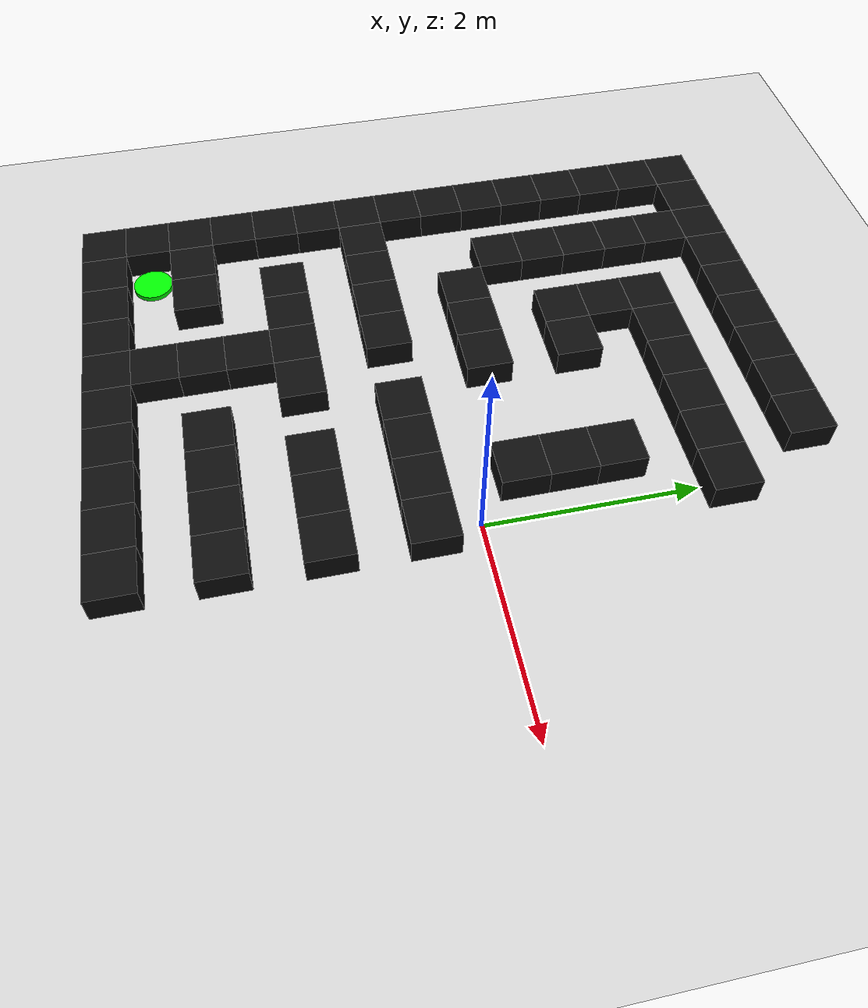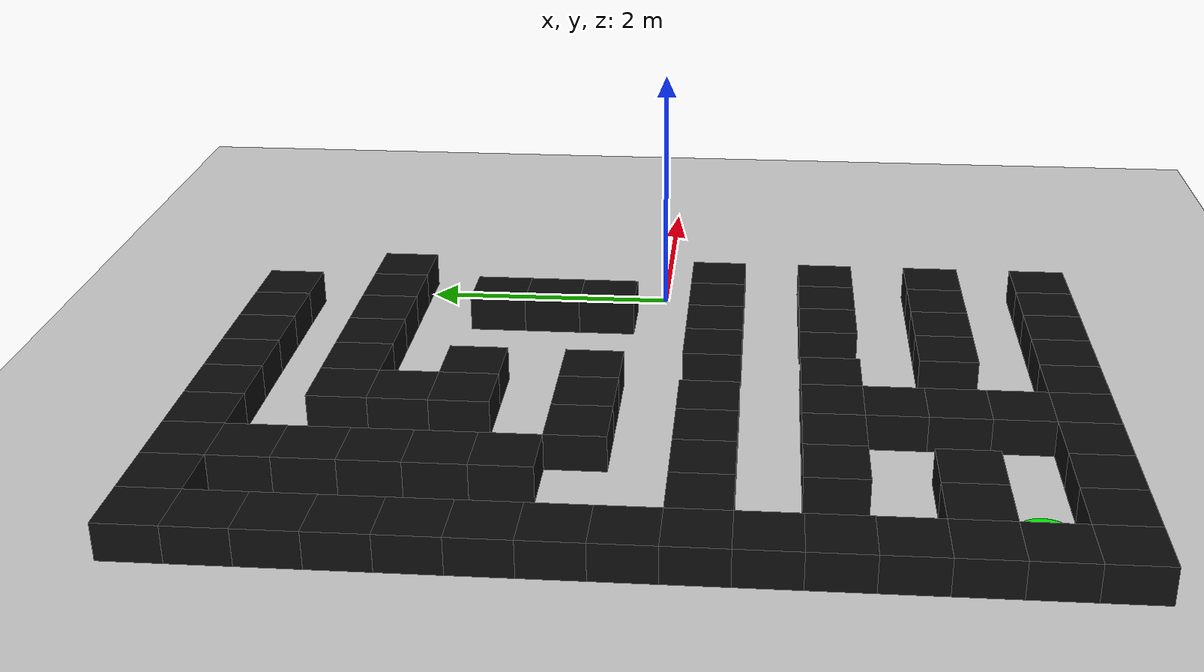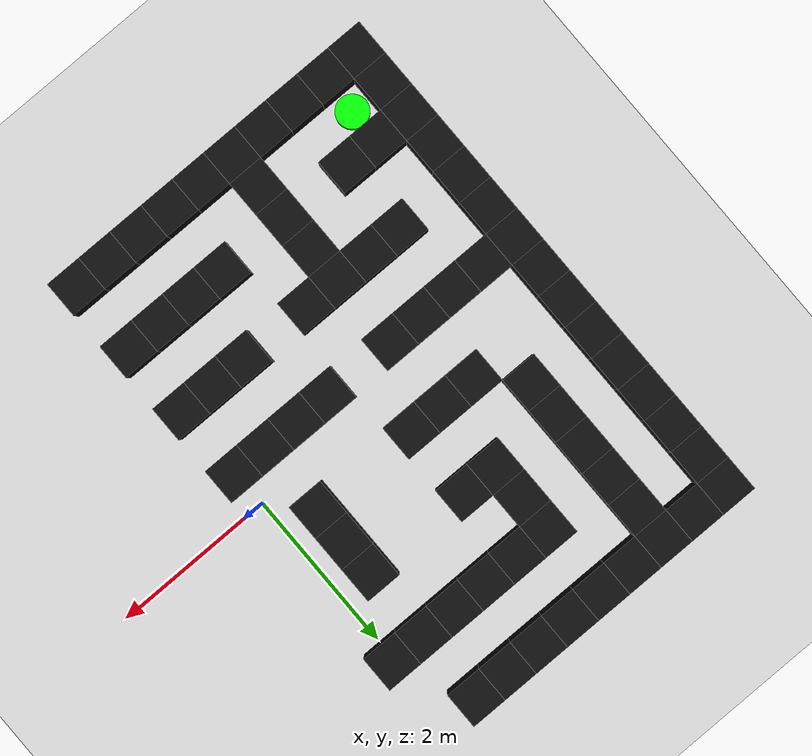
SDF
<sdf version="1.9">
 <world name="generated_block_maze">
  <model name="ground_plane">
   <static>true</static>
   <link name="link">
    <collision name="collision">
     <geometry><plane><normal>0 0 1</normal><size>30 30</size></plane></geometry>
    </collision>
    <visual name="visual">
     <geometry><plane><normal>0 0 1</normal><size>30 30</size></plane></geometry>
     <material><ambient>0.82 0.82 0.82 1</ambient><diffuse>0.82 0.82 0.82 1</diffuse></material>
    </visual>
   </link>
  </model>
  <model name="wall_0">
   <static>true</static>
   <pose>-4.050 -3.150 0.140 0 0 0</pose>
   <link name="link">
    <collision name="collision"><geometry><box><size>0.450 0.450 0.280</size></box></geometry></collision>
    <visual name="visual">
     <geometry><box><size>0.450 0.450 0.280</size></box></geometry>
     <material><ambient>0.05 0.05 0.05 1</ambient><diffuse>0.05 0.05 0.05 1</diffuse></material>
    </visual>
   </link>
  </model>
  <model name="wall_1">
   <static>true</static>
   <pose>-3.600 -3.150 0.140 0 0 0</pose>
   <link name="link">
    <collision name="collision"><geometry><box><size>0.450 0.450 0.280</size></box></geometry></collision>
    <visual name="visual">
     <geometry><box><size>0.450 0.450 0.280</size></box></geometry>
     <material><ambient>0.05 0.05 0.05 1</ambient><diffuse>0.05 0.05 0.05 1</diffuse></material>
    </visual>
   </link>
  </model>
  <model name="wall_2">
   <static>true</static>
   <pose>-3.150 -3.150 0.140 0 0 0</pose>
   <link name="link">
    <collision name="collision"><geometry><box><size>0.450 0.450 0.280</size></box></geometry></collision>
    <visual name="visual">
     <geometry><box><size>0.450 0.450 0.280</size></box></geometry>
     <material><ambient>0.05 0.05 0.05 1</ambient><diffuse>0.05 0.05 0.05 1</diffuse></material>
    </visual>
   </link>
  </model>
  <model name="wall_3">
   <static>true</static>
   <pose>-2.700 -3.150 0.140 0 0 0</pose>
   <link name="link">
    <collision name="collision"><geometry><box><size>0.450 0.450 0.280</size></box></geometry></collision>
    <visual name="visual">
     <geometry><box><size>0.450 0.450 0.280</size></box></geometry>
     <material><ambient>0.05 0.05 0.05 1</ambient><diffuse>0.05 0.05 0.05 1</diffuse></material>
    </visual>
   </link>
  </model>
  <model name="wall_4">
   <static>true</static>
   <pose>-2.250 -3.150 0.140 0 0 0</pose>
   <link name="link">
    <collision name="collision"><geometry><box><size>0.450 0.450 0.280</size></box></geometry></collision>
    <visual name="visual">
     <geometry><box><size>0.450 0.450 0.280</size></box></geometry>
     <material><ambient>0.05 0.05 0.05 1</ambient><diffuse>0.05 0.05 0.05 1</diffuse></material>
    </visual>
   </link>
  </model>
  <model name="wall_5">
   <static>true</static>
   <pose>-1.800 -3.150 0.140 0 0 0</pose>
   <link name="link">
    <collision name="collision"><geometry><box><size>0.450 0.450 0.280</size></box></geometry></collision>
    <visual name="visual">
     <geometry><box><size>0.450 0.450 0.280</size></box></geometry>
     <material><ambient>0.05 0.05 0.05 1</ambient><diffuse>0.05 0.05 0.05 1</diffuse></material>
    </visual>
   </link>
  </model>
  <model name="wall_6">
   <static>true</static>
   <pose>-1.350 -3.150 0.140 0 0 0</pose>
   <link name="link">
    <collision name="collision"><geometry><box><size>0.450 0.450 0.280</size></box></geometry></collision>
    <visual name="visual">
     <geometry><box><size>0.450 0.450 0.280</size></box></geometry>
     <material><ambient>0.05 0.05 0.05 1</ambient><diffuse>0.05 0.05 0.05 1</diffuse></material>
    </visual>
   </link>
  </model>
  <model name="wall_7">
   <static>true</static>
   <pose>-0.900 -3.150 0.140 0 0 0</pose>
   <link name="link">
    <collision name="collision"><geometry><box><size>0.450 0.450 0.280</size></box></geometry></collision>
    <visual name="visual">
     <geometry><box><size>0.450 0.450 0.280</size></box></geometry>
     <material><ambient>0.05 0.05 0.05 1</ambient><diffuse>0.05 0.05 0.05 1</diffuse></material>
    </visual>
   </link>
  </model>
  <model name="wall_8">
   <static>true</static>
   <pose>-0.450 -3.150 0.140 0 0 0</pose>
   <link name="link">
    <collision name="collision"><geometry><box><size>0.450 0.450 0.280</size></box></geometry></collision>
    <visual name="visual">
     <geometry><box><size>0.450 0.450 0.280</size></box></geometry>
     <material><ambient>0.05 0.05 0.05 1</ambient><diffuse>0.05 0.05 0.05 1</diffuse></material>
    </visual>
   </link>
  </model>
  <model name="wall_9">
   <static>true</static>
   <pose>0.000 -3.150 0.140 0 0 0</pose>
   <link name="link">
    <collision name="collision"><geometry><box><size>0.450 0.450 0.280</size></box></geometry></collision>
    <visual name="visual">
     <geometry><box><size>0.450 0.450 0.280</size></box></geometry>
     <material><ambient>0.05 0.05 0.05 1</ambient><diffuse>0.05 0.05 0.05 1</diffuse></material>
    </visual>
   </link>
  </model>
  <model name="wall_19">
   <static>true</static>
   <pose>-4.050 -2.700 0.140 0 0 0</pose>
   <link name="link">
    <collision name="collision"><geometry><box><size>0.450 0.450 0.280</size></box></geometry></collision>
    <visual name="visual">
     <geometry><box><size>0.450 0.450 0.280</size></box></geometry>
     <material><ambient>0.05 0.05 0.05 1</ambient><diffuse>0.05 0.05 0.05 1</diffuse></material>
    </visual>
   </link>
  </model>
  <model name="wall_20">
   <static>true</static>
   <pose>-2.250 -2.700 0.140 0 0 0</pose>
   <link name="link">
    <collision name="collision"><geometry><box><size>0.450 0.450 0.280</size></box></geometry></collision>
    <visual name="visual">
     <geometry><box><size>0.450 0.450 0.280</size></box></geometry>
     <material><ambient>0.05 0.05 0.05 1</ambient><diffuse>0.05 0.05 0.05 1</diffuse></material>
    </visual>
   </link>
  </model>
  <model name="wall_22">
   <static>true</static>
   <pose>-4.050 -2.250 0.140 0 0 0</pose>
   <link name="link">
    <collision name="collision"><geometry><box><size>0.450 0.450 0.280</size></box></geometry></collision>
    <visual name="visual">
     <geometry><box><size>0.450 0.450 0.280</size></box></geometry>
     <material><ambient>0.05 0.05 0.05 1</ambient><diffuse>0.05 0.05 0.05 1</diffuse></material>
    </visual>
   </link>
  </model>
  <model name="wall_23">
   <static>true</static>
   <pose>-3.600 -2.250 0.140 0 0 0</pose>
   <link name="link">
    <collision name="collision"><geometry><box><size>0.450 0.450 0.280</size></box></geometry></collision>
    <visual name="visual">
     <geometry><box><size>0.450 0.450 0.280</size></box></geometry>
     <material><ambient>0.05 0.05 0.05 1</ambient><diffuse>0.05 0.05 0.05 1</diffuse></material>
    </visual>
   </link>
  </model>
  <model name="wall_24">
   <static>true</static>
   <pose>-3.150 -2.250 0.140 0 0 0</pose>
   <link name="link">
    <collision name="collision"><geometry><box><size>0.450 0.450 0.280</size></box></geometry></collision>
    <visual name="visual">
     <geometry><box><size>0.450 0.450 0.280</size></box></geometry>
     <material><ambient>0.05 0.05 0.05 1</ambient><diffuse>0.05 0.05 0.05 1</diffuse></material>
    </visual>
   </link>
  </model>
  <model name="wall_25">
   <static>true</static>
   <pose>-2.250 -2.250 0.140 0 0 0</pose>
   <link name="link">
    <collision name="collision"><geometry><box><size>0.450 0.450 0.280</size></box></geometry></collision>
    <visual name="visual">
     <geometry><box><size>0.450 0.450 0.280</size></box></geometry>
     <material><ambient>0.05 0.05 0.05 1</ambient><diffuse>0.05 0.05 0.05 1</diffuse></material>
    </visual>
   </link>
  </model>
  <model name="wall_26">
   <static>true</static>
   <pose>-1.350 -2.250 0.140 0 0 0</pose>
   <link name="link">
    <collision name="collision"><geometry><box><size>0.450 0.450 0.280</size></box></geometry></collision>
    <visual name="visual">
     <geometry><box><size>0.450 0.450 0.280</size></box></geometry>
     <material><ambient>0.05 0.05 0.05 1</ambient><diffuse>0.05 0.05 0.05 1</diffuse></material>
    </visual>
   </link>
  </model>
  <model name="wall_27">
   <static>true</static>
   <pose>-0.900 -2.250 0.140 0 0 0</pose>
   <link name="link">
    <collision name="collision"><geometry><box><size>0.450 0.450 0.280</size></box></geometry></collision>
    <visual name="visual">
     <geometry><box><size>0.450 0.450 0.280</size></box></geometry>
     <material><ambient>0.05 0.05 0.05 1</ambient><diffuse>0.05 0.05 0.05 1</diffuse></material>
    </visual>
   </link>
  </model>
  <model name="wall_28">
   <static>true</static>
   <pose>-0.450 -2.250 0.140 0 0 0</pose>
   <link name="link">
    <collision name="collision"><geometry><box><size>0.450 0.450 0.280</size></box></geometry></collision>
    <visual name="visual">
     <geometry><box><size>0.450 0.450 0.280</size></box></geometry>
     <material><ambient>0.05 0.05 0.05 1</ambient><diffuse>0.05 0.05 0.05 1</diffuse></material>
    </visual>
   </link>
  </model>
  <model name="wall_29">
   <static>true</static>
   <pose>0.000 -2.250 0.140 0 0 0</pose>
   <link name="link">
    <collision name="collision"><geometry><box><size>0.450 0.450 0.280</size></box></geometry></collision>
    <visual name="visual">
     <geometry><box><size>0.450 0.450 0.280</size></box></geometry>
     <material><ambient>0.05 0.05 0.05 1</ambient><diffuse>0.05 0.05 0.05 1</diffuse></material>
    </visual>
   </link>
  </model>
  <model name="wall_38">
   <static>true</static>
   <pose>-4.050 -1.800 0.140 0 0 0</pose>
   <link name="link">
    <collision name="collision"><geometry><box><size>0.450 0.450 0.280</size></box></geometry></collision>
    <visual name="visual">
     <geometry><box><size>0.450 0.450 0.280</size></box></geometry>
     <material><ambient>0.05 0.05 0.05 1</ambient><diffuse>0.05 0.05 0.05 1</diffuse></material>
    </visual>
   </link>
  </model>
  <model name="wall_39">
   <static>true</static>
   <pose>-2.250 -1.800 0.140 0 0 0</pose>
   <link name="link">
    <collision name="collision"><geometry><box><size>0.450 0.450 0.280</size></box></geometry></collision>
    <visual name="visual">
     <geometry><box><size>0.450 0.450 0.280</size></box></geometry>
     <material><ambient>0.05 0.05 0.05 1</ambient><diffuse>0.05 0.05 0.05 1</diffuse></material>
    </visual>
   </link>
  </model>
  <model name="wall_43">
   <static>true</static>
   <pose>-4.050 -1.350 0.140 0 0 0</pose>
   <link name="link">
    <collision name="collision"><geometry><box><size>0.450 0.450 0.280</size></box></geometry></collision>
    <visual name="visual">
     <geometry><box><size>0.450 0.450 0.280</size></box></geometry>
     <material><ambient>0.05 0.05 0.05 1</ambient><diffuse>0.05 0.05 0.05 1</diffuse></material>
    </visual>
   </link>
  </model>
  <model name="wall_44">
   <static>true</static>
   <pose>-3.150 -1.350 0.140 0 0 0</pose>
   <link name="link">
    <collision name="collision"><geometry><box><size>0.450 0.450 0.280</size></box></geometry></collision>
    <visual name="visual">
     <geometry><box><size>0.450 0.450 0.280</size></box></geometry>
     <material><ambient>0.05 0.05 0.05 1</ambient><diffuse>0.05 0.05 0.05 1</diffuse></material>
    </visual>
   </link>
  </model>
  <model name="wall_45">
   <static>true</static>
   <pose>-2.700 -1.350 0.140 0 0 0</pose>
   <link name="link">
    <collision name="collision"><geometry><box><size>0.450 0.450 0.280</size></box></geometry></collision>
    <visual name="visual">
     <geometry><box><size>0.450 0.450 0.280</size></box></geometry>
     <material><ambient>0.05 0.05 0.05 1</ambient><diffuse>0.05 0.05 0.05 1</diffuse></material>
    </visual>
   </link>
  </model>
  <model name="wall_46">
   <static>true</static>
   <pose>-2.250 -1.350 0.140 0 0 0</pose>
   <link name="link">
    <collision name="collision"><geometry><box><size>0.450 0.450 0.280</size></box></geometry></collision>
    <visual name="visual">
     <geometry><box><size>0.450 0.450 0.280</size></box></geometry>
     <material><ambient>0.05 0.05 0.05 1</ambient><diffuse>0.05 0.05 0.05 1</diffuse></material>
    </visual>
   </link>
  </model>
  <model name="wall_47">
   <static>true</static>
   <pose>-1.800 -1.350 0.140 0 0 0</pose>
   <link name="link">
    <collision name="collision"><geometry><box><size>0.450 0.450 0.280</size></box></geometry></collision>
    <visual name="visual">
     <geometry><box><size>0.450 0.450 0.280</size></box></geometry>
     <material><ambient>0.05 0.05 0.05 1</ambient><diffuse>0.05 0.05 0.05 1</diffuse></material>
    </visual>
   </link>
  </model>
  <model name="wall_48">
   <static>true</static>
   <pose>-0.900 -1.350 0.140 0 0 0</pose>
   <link name="link">
    <collision name="collision"><geometry><box><size>0.450 0.450 0.280</size></box></geometry></collision>
    <visual name="visual">
     <geometry><box><size>0.450 0.450 0.280</size></box></geometry>
     <material><ambient>0.05 0.05 0.05 1</ambient><diffuse>0.05 0.05 0.05 1</diffuse></material>
    </visual>
   </link>
  </model>
  <model name="wall_49">
   <static>true</static>
   <pose>-0.450 -1.350 0.140 0 0 0</pose>
   <link name="link">
    <collision name="collision"><geometry><box><size>0.450 0.450 0.280</size></box></geometry></collision>
    <visual name="visual">
     <geometry><box><size>0.450 0.450 0.280</size></box></geometry>
     <material><ambient>0.05 0.05 0.05 1</ambient><diffuse>0.05 0.05 0.05 1</diffuse></material>
    </visual>
   </link>
  </model>
  <model name="wall_50">
   <static>true</static>
   <pose>0.000 -1.350 0.140 0 0 0</pose>
   <link name="link">
    <collision name="collision"><geometry><box><size>0.450 0.450 0.280</size></box></geometry></collision>
    <visual name="visual">
     <geometry><box><size>0.450 0.450 0.280</size></box></geometry>
     <material><ambient>0.05 0.05 0.05 1</ambient><diffuse>0.05 0.05 0.05 1</diffuse></material>
    </visual>
   </link>
  </model>
  <model name="wall_57">
   <static>true</static>
   <pose>-4.050 -0.900 0.140 0 0 0</pose>
   <link name="link">
    <collision name="collision"><geometry><box><size>0.450 0.450 0.280</size></box></geometry></collision>
    <visual name="visual">
     <geometry><box><size>0.450 0.450 0.280</size></box></geometry>
     <material><ambient>0.05 0.05 0.05 1</ambient><diffuse>0.05 0.05 0.05 1</diffuse></material>
    </visual>
   </link>
  </model>
  <model name="wall_61">
   <static>true</static>
   <pose>-4.050 -0.450 0.140 0 0 0</pose>
   <link name="link">
    <collision name="collision"><geometry><box><size>0.450 0.450 0.280</size></box></geometry></collision>
    <visual name="visual">
     <geometry><box><size>0.450 0.450 0.280</size></box></geometry>
     <material><ambient>0.05 0.05 0.05 1</ambient><diffuse>0.05 0.05 0.05 1</diffuse></material>
    </visual>
   </link>
  </model>
  <model name="wall_62">
   <static>true</static>
   <pose>-3.600 -0.450 0.140 0 0 0</pose>
   <link name="link">
    <collision name="collision"><geometry><box><size>0.450 0.450 0.280</size></box></geometry></collision>
    <visual name="visual">
     <geometry><box><size>0.450 0.450 0.280</size></box></geometry>
     <material><ambient>0.05 0.05 0.05 1</ambient><diffuse>0.05 0.05 0.05 1</diffuse></material>
    </visual>
   </link>
  </model>
  <model name="wall_63">
   <static>true</static>
   <pose>-3.150 -0.450 0.140 0 0 0</pose>
   <link name="link">
    <collision name="collision"><geometry><box><size>0.450 0.450 0.280</size></box></geometry></collision>
    <visual name="visual">
     <geometry><box><size>0.450 0.450 0.280</size></box></geometry>
     <material><ambient>0.05 0.05 0.05 1</ambient><diffuse>0.05 0.05 0.05 1</diffuse></material>
    </visual>
   </link>
  </model>
  <model name="wall_64">
   <static>true</static>
   <pose>-2.700 -0.450 0.140 0 0 0</pose>
   <link name="link">
    <collision name="collision"><geometry><box><size>0.450 0.450 0.280</size></box></geometry></collision>
    <visual name="visual">
     <geometry><box><size>0.450 0.450 0.280</size></box></geometry>
     <material><ambient>0.05 0.05 0.05 1</ambient><diffuse>0.05 0.05 0.05 1</diffuse></material>
    </visual>
   </link>
  </model>
  <model name="wall_65">
   <static>true</static>
   <pose>-2.250 -0.450 0.140 0 0 0</pose>
   <link name="link">
    <collision name="collision"><geometry><box><size>0.450 0.450 0.280</size></box></geometry></collision>
    <visual name="visual">
     <geometry><box><size>0.450 0.450 0.280</size></box></geometry>
     <material><ambient>0.05 0.05 0.05 1</ambient><diffuse>0.05 0.05 0.05 1</diffuse></material>
    </visual>
   </link>
  </model>
  <model name="wall_66">
   <static>true</static>
   <pose>-1.350 -0.450 0.140 0 0 0</pose>
   <link name="link">
    <collision name="collision"><geometry><box><size>0.450 0.450 0.280</size></box></geometry></collision>
    <visual name="visual">
     <geometry><box><size>0.450 0.450 0.280</size></box></geometry>
     <material><ambient>0.05 0.05 0.05 1</ambient><diffuse>0.05 0.05 0.05 1</diffuse></material>
    </visual>
   </link>
  </model>
  <model name="wall_67">
   <static>true</static>
   <pose>-0.900 -0.450 0.140 0 0 0</pose>
   <link name="link">
    <collision name="collision"><geometry><box><size>0.450 0.450 0.280</size></box></geometry></collision>
    <visual name="visual">
     <geometry><box><size>0.450 0.450 0.280</size></box></geometry>
     <material><ambient>0.05 0.05 0.05 1</ambient><diffuse>0.05 0.05 0.05 1</diffuse></material>
    </visual>
   </link>
  </model>
  <model name="wall_68">
   <static>true</static>
   <pose>-0.450 -0.450 0.140 0 0 0</pose>
   <link name="link">
    <collision name="collision"><geometry><box><size>0.450 0.450 0.280</size></box></geometry></collision>
    <visual name="visual">
     <geometry><box><size>0.450 0.450 0.280</size></box></geometry>
     <material><ambient>0.05 0.05 0.05 1</ambient><diffuse>0.05 0.05 0.05 1</diffuse></material>
    </visual>
   </link>
  </model>
  <model name="wall_69">
   <static>true</static>
   <pose>0.000 -0.450 0.140 0 0 0</pose>
   <link name="link">
    <collision name="collision"><geometry><box><size>0.450 0.450 0.280</size></box></geometry></collision>
    <visual name="visual">
     <geometry><box><size>0.450 0.450 0.280</size></box></geometry>
     <material><ambient>0.05 0.05 0.05 1</ambient><diffuse>0.05 0.05 0.05 1</diffuse></material>
    </visual>
   </link>
  </model>
  <model name="wall_77">
   <static>true</static>
   <pose>-4.050 0.000 0.140 0 0 0</pose>
   <link name="link">
    <collision name="collision"><geometry><box><size>0.450 0.450 0.280</size></box></geometry></collision>
    <visual name="visual">
     <geometry><box><size>0.450 0.450 0.280</size></box></geometry>
     <material><ambient>0.05 0.05 0.05 1</ambient><diffuse>0.05 0.05 0.05 1</diffuse></material>
    </visual>
   </link>
  </model>
  <model name="wall_81">
   <static>true</static>
   <pose>-4.050 0.450 0.140 0 0 0</pose>
   <link name="link">
    <collision name="collision"><geometry><box><size>0.450 0.450 0.280</size></box></geometry></collision>
    <visual name="visual">
     <geometry><box><size>0.450 0.450 0.280</size></box></geometry>
     <material><ambient>0.05 0.05 0.05 1</ambient><diffuse>0.05 0.05 0.05 1</diffuse></material>
    </visual>
   </link>
  </model>
  <model name="wall_82">
   <static>true</static>
   <pose>-2.700 0.450 0.140 0 0 0</pose>
   <link name="link">
    <collision name="collision"><geometry><box><size>0.450 0.450 0.280</size></box></geometry></collision>
    <visual name="visual">
     <geometry><box><size>0.450 0.450 0.280</size></box></geometry>
     <material><ambient>0.05 0.05 0.05 1</ambient><diffuse>0.05 0.05 0.05 1</diffuse></material>
    </visual>
   </link>
  </model>
  <model name="wall_83">
   <static>true</static>
   <pose>-2.250 0.450 0.140 0 0 0</pose>
   <link name="link">
    <collision name="collision"><geometry><box><size>0.450 0.450 0.280</size></box></geometry></collision>
    <visual name="visual">
     <geometry><box><size>0.450 0.450 0.280</size></box></geometry>
     <material><ambient>0.05 0.05 0.05 1</ambient><diffuse>0.05 0.05 0.05 1</diffuse></material>
    </visual>
   </link>
  </model>
  <model name="wall_84">
   <static>true</static>
   <pose>-1.800 0.450 0.140 0 0 0</pose>
   <link name="link">
    <collision name="collision"><geometry><box><size>0.450 0.450 0.280</size></box></geometry></collision>
    <visual name="visual">
     <geometry><box><size>0.450 0.450 0.280</size></box></geometry>
     <material><ambient>0.05 0.05 0.05 1</ambient><diffuse>0.05 0.05 0.05 1</diffuse></material>
    </visual>
   </link>
  </model>
  <model name="wall_85">
   <static>true</static>
   <pose>-0.450 0.450 0.140 0 0 0</pose>
   <link name="link">
    <collision name="collision"><geometry><box><size>0.450 0.450 0.280</size></box></geometry></collision>
    <visual name="visual">
     <geometry><box><size>0.450 0.450 0.280</size></box></geometry>
     <material><ambient>0.05 0.05 0.05 1</ambient><diffuse>0.05 0.05 0.05 1</diffuse></material>
    </visual>
   </link>
  </model>
  <model name="wall_93">
   <static>true</static>
   <pose>-4.050 0.900 0.140 0 0 0</pose>
   <link name="link">
    <collision name="collision"><geometry><box><size>0.450 0.450 0.280</size></box></geometry></collision>
    <visual name="visual">
     <geometry><box><size>0.450 0.450 0.280</size></box></geometry>
     <material><ambient>0.05 0.05 0.05 1</ambient><diffuse>0.05 0.05 0.05 1</diffuse></material>
    </visual>
   </link>
  </model>
  <model name="wall_94">
   <static>true</static>
   <pose>-3.150 0.900 0.140 0 0 0</pose>
   <link name="link">
    <collision name="collision"><geometry><box><size>0.450 0.450 0.280</size></box></geometry></collision>
    <visual name="visual">
     <geometry><box><size>0.450 0.450 0.280</size></box></geometry>
     <material><ambient>0.05 0.05 0.05 1</ambient><diffuse>0.05 0.05 0.05 1</diffuse></material>
    </visual>
   </link>
  </model>
  <model name="wall_95">
   <static>true</static>
   <pose>-0.450 0.900 0.140 0 0 0</pose>
   <link name="link">
    <collision name="collision"><geometry><box><size>0.450 0.450 0.280</size></box></geometry></collision>
    <visual name="visual">
     <geometry><box><size>0.450 0.450 0.280</size></box></geometry>
     <material><ambient>0.05 0.05 0.05 1</ambient><diffuse>0.05 0.05 0.05 1</diffuse></material>
    </visual>
   </link>
  </model>
  <model name="wall_99">
   <static>true</static>
   <pose>-4.050 1.350 0.140 0 0 0</pose>
   <link name="link">
    <collision name="collision"><geometry><box><size>0.450 0.450 0.280</size></box></geometry></collision>
    <visual name="visual">
     <geometry><box><size>0.450 0.450 0.280</size></box></geometry>
     <material><ambient>0.05 0.05 0.05 1</ambient><diffuse>0.05 0.05 0.05 1</diffuse></material>
    </visual>
   </link>
  </model>
  <model name="wall_100">
   <static>true</static>
   <pose>-3.150 1.350 0.140 0 0 0</pose>
   <link name="link">
    <collision name="collision"><geometry><box><size>0.450 0.450 0.280</size></box></geometry></collision>
    <visual name="visual">
     <geometry><box><size>0.450 0.450 0.280</size></box></geometry>
     <material><ambient>0.05 0.05 0.05 1</ambient><diffuse>0.05 0.05 0.05 1</diffuse></material>
    </visual>
   </link>
  </model>
  <model name="wall_101">
   <static>true</static>
   <pose>-2.250 1.350 0.140 0 0 0</pose>
   <link name="link">
    <collision name="collision"><geometry><box><size>0.450 0.450 0.280</size></box></geometry></collision>
    <visual name="visual">
     <geometry><box><size>0.450 0.450 0.280</size></box></geometry>
     <material><ambient>0.05 0.05 0.05 1</ambient><diffuse>0.05 0.05 0.05 1</diffuse></material>
    </visual>
   </link>
  </model>
  <model name="wall_102">
   <static>true</static>
   <pose>-1.800 1.350 0.140 0 0 0</pose>
   <link name="link">
    <collision name="collision"><geometry><box><size>0.450 0.450 0.280</size></box></geometry></collision>
    <visual name="visual">
     <geometry><box><size>0.450 0.450 0.280</size></box></geometry>
     <material><ambient>0.05 0.05 0.05 1</ambient><diffuse>0.05 0.05 0.05 1</diffuse></material>
    </visual>
   </link>
  </model>
  <model name="wall_103">
   <static>true</static>
   <pose>-0.450 1.350 0.140 0 0 0</pose>
   <link name="link">
    <collision name="collision"><geometry><box><size>0.450 0.450 0.280</size></box></geometry></collision>
    <visual name="visual">
     <geometry><box><size>0.450 0.450 0.280</size></box></geometry>
     <material><ambient>0.05 0.05 0.05 1</ambient><diffuse>0.05 0.05 0.05 1</diffuse></material>
    </visual>
   </link>
  </model>
  <model name="wall_109">
   <static>true</static>
   <pose>-4.050 1.800 0.140 0 0 0</pose>
   <link name="link">
    <collision name="collision"><geometry><box><size>0.450 0.450 0.280</size></box></geometry></collision>
    <visual name="visual">
     <geometry><box><size>0.450 0.450 0.280</size></box></geometry>
     <material><ambient>0.05 0.05 0.05 1</ambient><diffuse>0.05 0.05 0.05 1</diffuse></material>
    </visual>
   </link>
  </model>
  <model name="wall_110">
   <static>true</static>
   <pose>-3.150 1.800 0.140 0 0 0</pose>
   <link name="link">
    <collision name="collision"><geometry><box><size>0.450 0.450 0.280</size></box></geometry></collision>
    <visual name="visual">
     <geometry><box><size>0.450 0.450 0.280</size></box></geometry>
     <material><ambient>0.05 0.05 0.05 1</ambient><diffuse>0.05 0.05 0.05 1</diffuse></material>
    </visual>
   </link>
  </model>
  <model name="wall_111">
   <static>true</static>
   <pose>-2.250 1.800 0.140 0 0 0</pose>
   <link name="link">
    <collision name="collision"><geometry><box><size>0.450 0.450 0.280</size></box></geometry></collision>
    <visual name="visual">
     <geometry><box><size>0.450 0.450 0.280</size></box></geometry>
     <material><ambient>0.05 0.05 0.05 1</ambient><diffuse>0.05 0.05 0.05 1</diffuse></material>
    </visual>
   </link>
  </model>
  <model name="wall_116">
   <static>true</static>
   <pose>-4.050 2.250 0.140 0 0 0</pose>
   <link name="link">
    <collision name="collision"><geometry><box><size>0.450 0.450 0.280</size></box></geometry></collision>
    <visual name="visual">
     <geometry><box><size>0.450 0.450 0.280</size></box></geometry>
     <material><ambient>0.05 0.05 0.05 1</ambient><diffuse>0.05 0.05 0.05 1</diffuse></material>
    </visual>
   </link>
  </model>
  <model name="wall_117">
   <static>true</static>
   <pose>-3.150 2.250 0.140 0 0 0</pose>
   <link name="link">
    <collision name="collision"><geometry><box><size>0.450 0.450 0.280</size></box></geometry></collision>
    <visual name="visual">
     <geometry><box><size>0.450 0.450 0.280</size></box></geometry>
     <material><ambient>0.05 0.05 0.05 1</ambient><diffuse>0.05 0.05 0.05 1</diffuse></material>
    </visual>
   </link>
  </model>
  <model name="wall_118">
   <static>true</static>
   <pose>-2.250 2.250 0.140 0 0 0</pose>
   <link name="link">
    <collision name="collision"><geometry><box><size>0.450 0.450 0.280</size></box></geometry></collision>
    <visual name="visual">
     <geometry><box><size>0.450 0.450 0.280</size></box></geometry>
     <material><ambient>0.05 0.05 0.05 1</ambient><diffuse>0.05 0.05 0.05 1</diffuse></material>
    </visual>
   </link>
  </model>
  <model name="wall_119">
   <static>true</static>
   <pose>-1.800 2.250 0.140 0 0 0</pose>
   <link name="link">
    <collision name="collision"><geometry><box><size>0.450 0.450 0.280</size></box></geometry></collision>
    <visual name="visual">
     <geometry><box><size>0.450 0.450 0.280</size></box></geometry>
     <material><ambient>0.05 0.05 0.05 1</ambient><diffuse>0.05 0.05 0.05 1</diffuse></material>
    </visual>
   </link>
  </model>
  <model name="wall_120">
   <static>true</static>
   <pose>-1.350 2.250 0.140 0 0 0</pose>
   <link name="link">
    <collision name="collision"><geometry><box><size>0.450 0.450 0.280</size></box></geometry></collision>
    <visual name="visual">
     <geometry><box><size>0.450 0.450 0.280</size></box></geometry>
     <material><ambient>0.05 0.05 0.05 1</ambient><diffuse>0.05 0.05 0.05 1</diffuse></material>
    </visual>
   </link>
  </model>
  <model name="wall_121">
   <static>true</static>
   <pose>-0.900 2.250 0.140 0 0 0</pose>
   <link name="link">
    <collision name="collision"><geometry><box><size>0.450 0.450 0.280</size></box></geometry></collision>
    <visual name="visual">
     <geometry><box><size>0.450 0.450 0.280</size></box></geometry>
     <material><ambient>0.05 0.05 0.05 1</ambient><diffuse>0.05 0.05 0.05 1</diffuse></material>
    </visual>
   </link>
  </model>
  <model name="wall_122">
   <static>true</static>
   <pose>-0.450 2.250 0.140 0 0 0</pose>
   <link name="link">
    <collision name="collision"><geometry><box><size>0.450 0.450 0.280</size></box></geometry></collision>
    <visual name="visual">
     <geometry><box><size>0.450 0.450 0.280</size></box></geometry>
     <material><ambient>0.05 0.05 0.05 1</ambient><diffuse>0.05 0.05 0.05 1</diffuse></material>
    </visual>
   </link>
  </model>
  <model name="wall_123">
   <static>true</static>
   <pose>0.000 2.250 0.140 0 0 0</pose>
   <link name="link">
    <collision name="collision"><geometry><box><size>0.450 0.450 0.280</size></box></geometry></collision>
    <visual name="visual">
     <geometry><box><size>0.450 0.450 0.280</size></box></geometry>
     <material><ambient>0.05 0.05 0.05 1</ambient><diffuse>0.05 0.05 0.05 1</diffuse></material>
    </visual>
   </link>
  </model>
  <model name="wall_129">
   <static>true</static>
   <pose>-4.050 2.700 0.140 0 0 0</pose>
   <link name="link">
    <collision name="collision"><geometry><box><size>0.450 0.450 0.280</size></box></geometry></collision>
    <visual name="visual">
     <geometry><box><size>0.450 0.450 0.280</size></box></geometry>
     <material><ambient>0.05 0.05 0.05 1</ambient><diffuse>0.05 0.05 0.05 1</diffuse></material>
    </visual>
   </link>
  </model>
  <model name="wall_130">
   <static>true</static>
   <pose>-3.150 2.700 0.140 0 0 0</pose>
   <link name="link">
    <collision name="collision"><geometry><box><size>0.450 0.450 0.280</size></box></geometry></collision>
    <visual name="visual">
     <geometry><box><size>0.450 0.450 0.280</size></box></geometry>
     <material><ambient>0.05 0.05 0.05 1</ambient><diffuse>0.05 0.05 0.05 1</diffuse></material>
    </visual>
   </link>
  </model>
  <model name="wall_133">
   <static>true</static>
   <pose>-4.050 3.150 0.140 0 0 0</pose>
   <link name="link">
    <collision name="collision"><geometry><box><size>0.450 0.450 0.280</size></box></geometry></collision>
    <visual name="visual">
     <geometry><box><size>0.450 0.450 0.280</size></box></geometry>
     <material><ambient>0.05 0.05 0.05 1</ambient><diffuse>0.05 0.05 0.05 1</diffuse></material>
    </visual>
   </link>
  </model>
  <model name="wall_134">
   <static>true</static>
   <pose>-3.600 3.150 0.140 0 0 0</pose>
   <link name="link">
    <collision name="collision"><geometry><box><size>0.450 0.450 0.280</size></box></geometry></collision>
    <visual name="visual">
     <geometry><box><size>0.450 0.450 0.280</size></box></geometry>
     <material><ambient>0.05 0.05 0.05 1</ambient><diffuse>0.05 0.05 0.05 1</diffuse></material>
    </visual>
   </link>
  </model>
  <model name="wall_135">
   <static>true</static>
   <pose>-3.150 3.150 0.140 0 0 0</pose>
   <link name="link">
    <collision name="collision"><geometry><box><size>0.450 0.450 0.280</size></box></geometry></collision>
    <visual name="visual">
     <geometry><box><size>0.450 0.450 0.280</size></box></geometry>
     <material><ambient>0.05 0.05 0.05 1</ambient><diffuse>0.05 0.05 0.05 1</diffuse></material>
    </visual>
   </link>
  </model>
  <model name="wall_136">
   <static>true</static>
   <pose>-2.700 3.150 0.140 0 0 0</pose>
   <link name="link">
    <collision name="collision"><geometry><box><size>0.450 0.450 0.280</size></box></geometry></collision>
    <visual name="visual">
     <geometry><box><size>0.450 0.450 0.280</size></box></geometry>
     <material><ambient>0.05 0.05 0.05 1</ambient><diffuse>0.05 0.05 0.05 1</diffuse></material>
    </visual>
   </link>
  </model>
  <model name="wall_137">
   <static>true</static>
   <pose>-2.250 3.150 0.140 0 0 0</pose>
   <link name="link">
    <collision name="collision"><geometry><box><size>0.450 0.450 0.280</size></box></geometry></collision>
    <visual name="visual">
     <geometry><box><size>0.450 0.450 0.280</size></box></geometry>
     <material><ambient>0.05 0.05 0.05 1</ambient><diffuse>0.05 0.05 0.05 1</diffuse></material>
    </visual>
   </link>
  </model>
  <model name="wall_138">
   <static>true</static>
   <pose>-1.800 3.150 0.140 0 0 0</pose>
   <link name="link">
    <collision name="collision"><geometry><box><size>0.450 0.450 0.280</size></box></geometry></collision>
    <visual name="visual">
     <geometry><box><size>0.450 0.450 0.280</size></box></geometry>
     <material><ambient>0.05 0.05 0.05 1</ambient><diffuse>0.05 0.05 0.05 1</diffuse></material>
    </visual>
   </link>
  </model>
  <model name="wall_139">
   <static>true</static>
   <pose>-1.350 3.150 0.140 0 0 0</pose>
   <link name="link">
    <collision name="collision"><geometry><box><size>0.450 0.450 0.280</size></box></geometry></collision>
    <visual name="visual">
     <geometry><box><size>0.450 0.450 0.280</size></box></geometry>
     <material><ambient>0.05 0.05 0.05 1</ambient><diffuse>0.05 0.05 0.05 1</diffuse></material>
    </visual>
   </link>
  </model>
  <model name="wall_140">
   <static>true</static>
   <pose>-0.900 3.150 0.140 0 0 0</pose>
   <link name="link">
    <collision name="collision"><geometry><box><size>0.450 0.450 0.280</size></box></geometry></collision>
    <visual name="visual">
     <geometry><box><size>0.450 0.450 0.280</size></box></geometry>
     <material><ambient>0.05 0.05 0.05 1</ambient><diffuse>0.05 0.05 0.05 1</diffuse></material>
    </visual>
   </link>
  </model>
  <model name="wall_141">
   <static>true</static>
   <pose>-0.450 3.150 0.140 0 0 0</pose>
   <link name="link">
    <collision name="collision"><geometry><box><size>0.450 0.450 0.280</size></box></geometry></collision>
    <visual name="visual">
     <geometry><box><size>0.450 0.450 0.280</size></box></geometry>
     <material><ambient>0.05 0.05 0.05 1</ambient><diffuse>0.05 0.05 0.05 1</diffuse></material>
    </visual>
   </link>
  </model>
  <model name="start_marker">
   <static>true</static>
   <pose>-3.600 -2.700 0.025 0 0 0</pose>
   <link name="link">
    <visual name="visual">
     <geometry><cylinder><radius>0.200</radius><length>0.050</length></cylinder></geometry>
     <material><ambient>0 1 0 1</ambient><diffuse>0 1 0 1</diffuse></material>
    </visual>
   </link>
  </model>
 </world>
</sdf>
